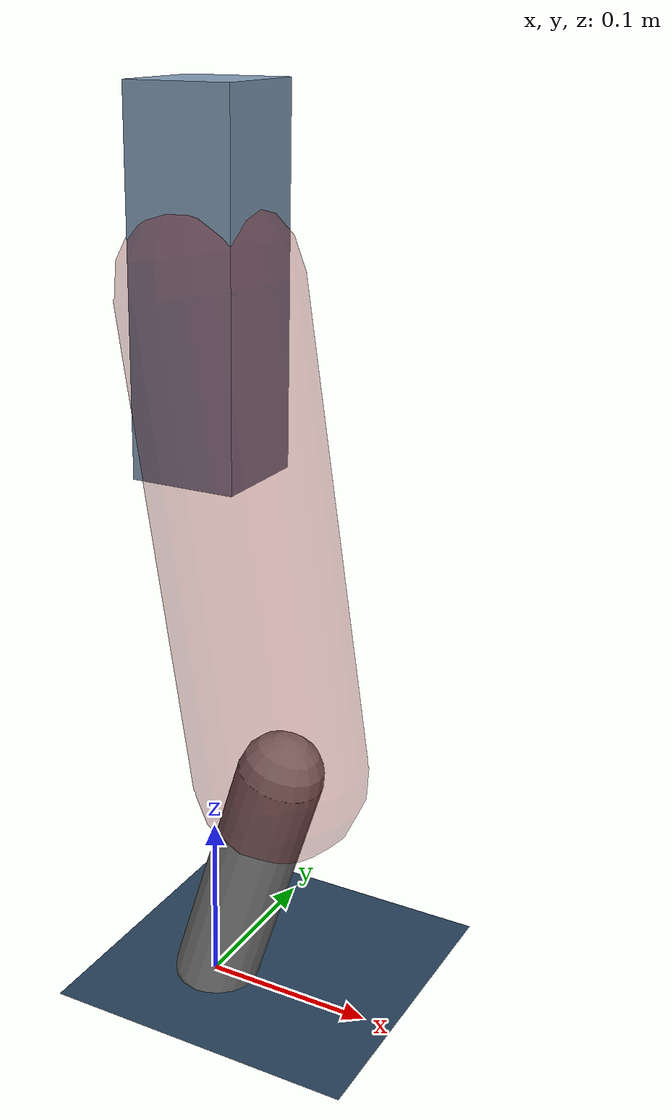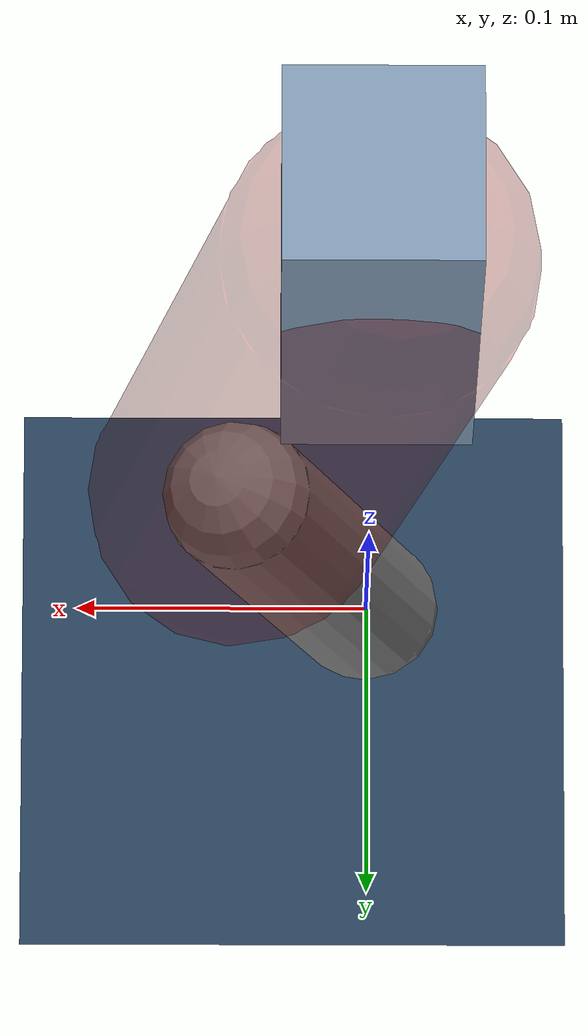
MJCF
<mujoco model="Hopper2D">
	<compiler inertiafromgeom="true" angle="radian" />
	<option timestep="0.001" integrator="implicit" cone="elliptic" solver="Newton" tolerance="1e-10" />

	<default>
		<geom contype="1" conaffinity="1" condim="3" friction="2 0.005 0.0001" solref="0.005 1" />
		<joint limited="true" damping="0.1" />
	</default>

	<asset>
		<texture name="skybox" type="skybox" builtin="gradient" rgb1=".4 .6 .8" rgb2="0 0 0" width="800" height="800" />
		<texture name="grid" type="2d" builtin="checker" rgb1=".1 .2 .3" rgb2=".2 .3 .4" width="300" height="300" mark="edge" markrgb=".2 .3 .4" />
		<material name="ground" texture="grid" texrepeat="1 1" texuniform="true" reflectance="0.1" />
		<material name="leg" rgba="0.5 0.6 0.7 1" />
	</asset>

	<worldbody>

		<geom name="floor" type="plane" size="5 5 0.25" material="ground" />

		<light directional="false" diffuse="0.8 0.8 0.8" specular="0.3 0.3 0.3" pos="0 0 2" dir="0 0 -1" />
		<light mode="targetbodycom" target="base" directional="false" diffuse="0.8 0.8 0.8" specular="0.3 0.3 0.3" pos="0 0 2" dir="0 0 -1" />

		<camera name="fixed" pos="0 -2 1" xyaxes="1 0 0 0 0 1" />
		<camera name="tracking" mode="trackcom" pos="0 -3 1" />

		<body name="root" pos="0 0 0.4172976153102453">
			<joint name="slide_x" type="slide" axis="1 0 0" range="-100 100" />
			<joint name="slide_z" type="slide" axis="0 0 1" range="0 10" />

			<body name="base" pos="0 0 0">
				<geom name="torso" type="box" size="0.03 0.03 0.1" mass="2.518" material="leg" />

				<body name="link1" pos="0 0 0" euler="0 1.409907233048207 0">
					<joint type="hinge" axis="0 -1 0" pos="0 0 0" name="hinge1" limited="true" range="-3.14 3.14" stiffness="0" damping="0.1" />
					<geom name="thigh" type="capsule" fromto="0 0 0 0.27440995056253076 0 0" size="0.05" rgba="0.5 0 0 0.3" mass="0.920306866518833" />

					<body name="link2" pos="0.27440995056253076 0 0" euler="0 0.4525329780198956 0">
						<joint type="hinge" axis="0 -1 0" pos="0 0 0" name="hinge2" limited="true" range="-3.14 3.14" stiffness="0" damping="0.1" />
						<geom name="shank" type="capsule" fromto="0 0 0 0.15288766474771454 0 0" size="0.025" mass="0.3602988982729431" />

					</body>
				</body>
			</body>
		</body>
	</worldbody>

	<actuator>
		<motor name="torque1" joint="hinge1" ctrlrange="-137.87435345855775 137.87435345855775" ctrllimited="true" gear="1" />
		<motor name="torque2" joint="hinge2" ctrlrange="-12.107008112030954 12.107008112030954" ctrllimited="true" gear="1" />
	</actuator>
</mujoco>
